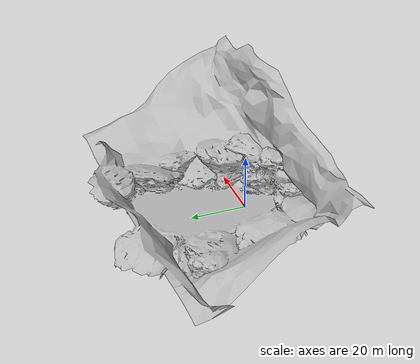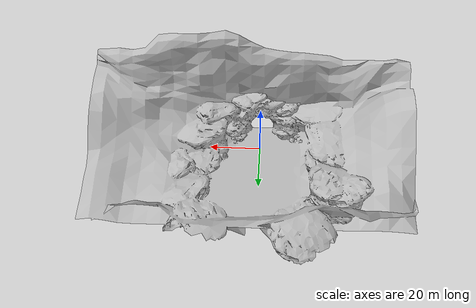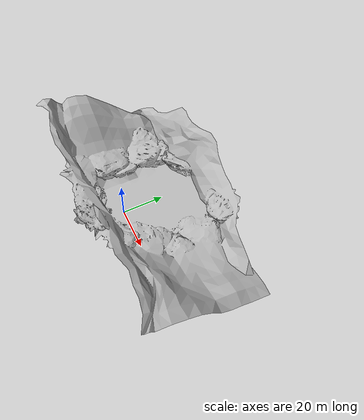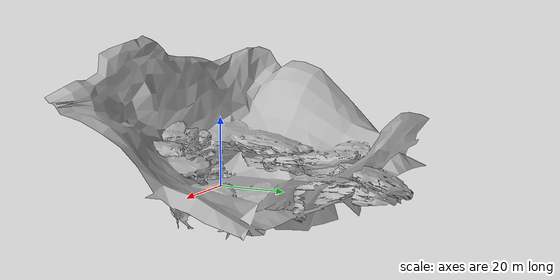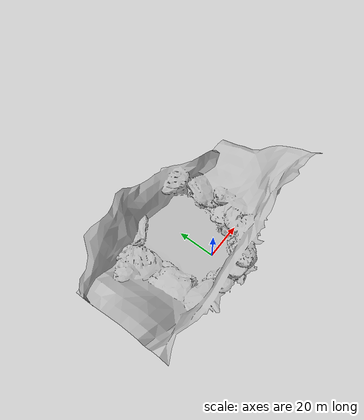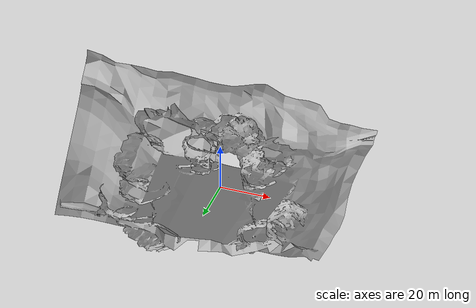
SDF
<?xml version="1.0"?>
<sdf version="1.6">
  <model name="Cave Starting Area">
    <pose>0 0 0 0 0 0</pose>
    <static>true</static>
    <link name="link">
      <collision name="collision">
        <geometry>
          <mesh>
            <uri>model://Cave Starting Area/meshes/cavestartingarea.dae</uri>
         </mesh>
        </geometry>
      </collision>
      <visual name="visual">
        <geometry>
          <mesh>
            <uri>model://Cave Starting Area/meshes/cavestartingarea.dae</uri>
         </mesh>
        </geometry>
      </visual>
    </link>
  </model>
 </sdf>
